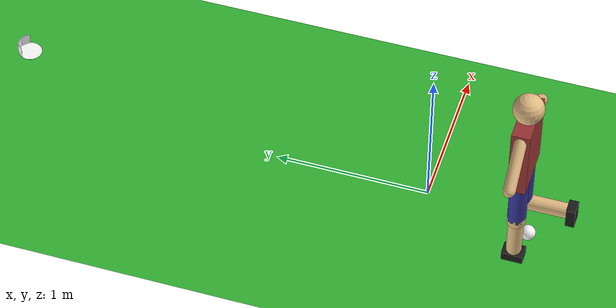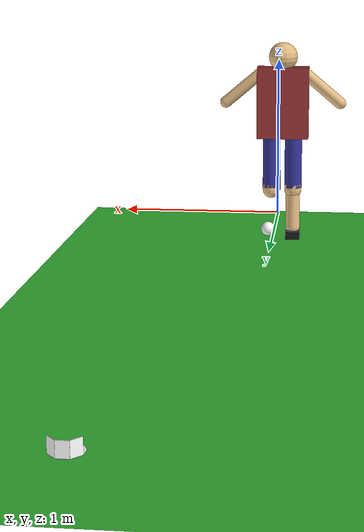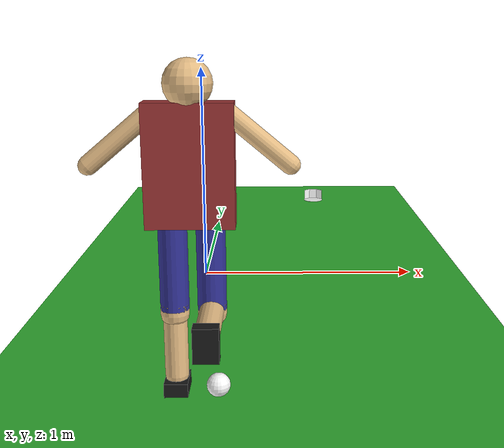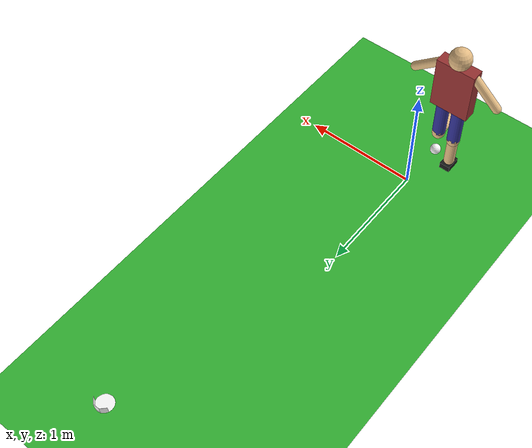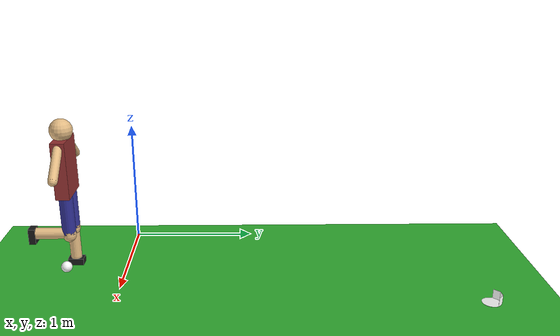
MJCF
<mujoco model="Leg3D">
  <compiler inertiafromgeom="true" angle="radian" coordinate="local"/>
  <option timestep="0.01" gravity="0 0 0" iterations="20" integrator="Euler"/>

  <default>
    <joint armature='0.04' damping="1" limited="true"/>
    <geom friction=".0 .0 .0" density="300" margin="0.002" condim="1" contype="0" conaffinity="0"/>
  </default>

  <worldbody>
    <light diffuse=".5 .5 .5" pos="0 0 3" dir="0 0 -1"/>

    <geom name="table" rgba= "0.2 0.7 0.2 1" type="plane" pos="0 0.5 -0.325 " size="20 20 0.1" contype="1" conaffinity="1"/>

    <geom name="bo" type="box" rgba="0.6 0.2 0.2 1" pos= "0 -0.6 0.65" size="0.18 0.06 0.25" />
    <geom name="e3" type="sphere" rgba="0.91 0.75 0.53 1" pos="0 -0.60 0.97"  size="0.1"/>

    <geom name="e1" type="capsule" rgba="0.91 0.75 0.53 1" fromto="-0.15 -0.6  0.86 -0.4 -0.6 0.65" size="0.04"/>
    <geom name="e2" type="capsule" rgba="0.91 0.75 0.53 1" fromto="0.15 -0.6  0.86 0.4 -0.6 0.65"  size="0.04"/>

    <!-- upper thigh link -->
    <body name="r_upper_thigh_link"  pos="0.077 -0.6 0.45">

      <geom name="ut" type="capsule" rgba="0.2 0.2 0.6 1" fromto="0 0 0 0 0 -0.4" size="0.06" />
      <!--  Hip Lift Joint Location -->
      <joint name="r_hip_lift_joint" type="hinge" pos="0 0 0" axis="0 1 0" range="-0.785 0.785" damping="1.0" />
      <!--  Hip Pan Joint Location -->
      <joint name="r_hip_pan_joint" type="hinge" pos="0 0 0" axis="1 0 0" range="-0.9 0.9" damping="1.0" />
      <!-- Joint to roll upper thigh y axis -->
      <joint name="r_upper_thigh_roll_joint" type="hinge" pos="0 0 0" axis="0 0 1" range="-1.5 1.7" damping="0.1" />

      <!-- knee joint -->
      <body name="r_knee_flex_link"  pos="0 0 -0.4">
        <geom name="kf" type="capsule" rgba= "0.91 0.75 0.53 1" fromto="0 0 0.02 0.0 0 -0.02" size="0.06" />
        <joint name="r_knee_flex_joint" type="hinge" pos="0 0 0" axis="1 0 0" range="0 1.57" damping="0.1"/>

        <!-- leg link -->
        <body name="r_leg_link"  pos="0 0 0">
          <geom name="fa" type="capsule" rgba="0.91 0.75 0.53 1" fromto="0 0 0 0 -0.291 0" size="0.05" />

          <!-- ankle flex -->
          <body name="r_ankle_flex_link" pos="0 -0.321 0">
            <geom name="af" type="capsule" fromto="-0.02 0 0 0.02 0  0" size="0.01" />
            <joint name="r_ankle_flex_joint" type="hinge" pos="0 0 0" axis="0 1 0" range="-1.094 0" damping=".1" />
            <joint name="r_ankle_roll_joint" type="hinge" pos="0 0 0" limited="true" axis="1 0 0" damping="0.1" range="-1.5 1.5"/>

            <!-- foot -->
            <body name="tips_foot"  pos="0 0 0">
              <geom conaffinity="1" rgba="0.1 0.1 0.1 1" contype="1" name="tip_footl" pos="0 0 -0.017" size="0.05 0.03 0.07" type="box" />
            </body>
          </body>
        </body>
      </body>
    </body>

    <!-- upper thigh link -->
    <body name="r_upper_thigh_link2"  pos="-0.077 -0.6 0.45">
      <geom name="ut2" type="capsule" rgba="0.2 0.2 0.6 1" fromto="0 0 0 0 0 -0.4" size="0.06" />

      <!-- knee joint -->
      <body name="r_knee_flex_link2"  pos="0 0 -0.4">
        <geom name="kf2" type="capsule" rgba= "0.91 0.75 0.53 1" fromto="0 0 0.02 0.0 0 -0.02" size="0.06" />

        <!-- leg link -->
        <body name="r_leg_link2"  pos="0 0 0">
          <geom name="fa2" type="capsule" rgba="0.91 0.75 0.53 1" fromto="0 0 0 0 0 -0.291" size="0.05" />

          <!-- ankle flex -->
          <body name="r_ankle_flex_link2" pos="0 0 -0.321">
            <geom name="af2" type="capsule" fromto="-0.02 0 0 0.02 0  0" size="0.01" />

            <!-- foot -->
            <body name="tips_foot2"  pos="0 0 0">
              <geom conaffinity="1" rgba="0.1 0.1 0.1 1" contype="1" name="tip_footl2" pos="0 0 -0.017" size="0.05 0.07 0.03" type="box" />
            </body>
          </body>
        </body>
      </body>
    </body>

    <body name="object" pos="0.1 -0.65 -0.270" >
      <geom type="sphere" rgba="1 1 1 1" pos="0 0 0" size="0.05 0.05 0.05" contype="1" conaffinity="0"/>
      <joint name="obj_slidey" armature="0.1" type="slide" pos="0 0 0" axis="0 1 0" range="-10.3213 10.3" damping="0.3"/>
      <joint name="obj_slidex" armature="0.1" type="slide" pos="0 0 0" axis="1 0 0" range="-10.3213 10.3" damping="0.3"/>
    </body>

    <body name="goal" pos="0.7 3 -0.3230">
      <geom rgba="1. 1. 1. 0" pos="0 0 0" type="box" size="0.01 0.01 0.01" contype="0" conaffinity="0"/>
      <body pos="0 0 0">
        <geom rgba="1. 1. 1. 1" pos="0 0.075 0.04" type="box" size="0.032 0.001 0.04" contype="0" conaffinity="1"/>
      </body>
      <body name="coaster" pos="0 0 0">
        <geom rgba="1. 1. 1. 1" type="cylinder" size="0.08 0.001 0.1" density='1000000' contype="0" conaffinity="0"/>
      </body>
      <body pos="0 0 0" axisangle="0 0 1 0.785">
        <geom rgba="1. 1. 1. 1" pos="0 0.075 0.04" type="box" size="0.032 0.001 0.04" contype="0" conaffinity="1"/>
      </body>
      <body pos="0 0 0" axisangle="0 0 1 -0.785">
        <geom rgba="1. 1. 1. 1" pos="0 0.075 0.04" type="box" size="0.032 0.001 0.04" contype="0" conaffinity="1"/>
      </body>
      <joint name="goal_free" type="free" pos="0 0 0" limited="false" damping="0"/>
    </body>
  </worldbody>

  <actuator>
    <motor joint="r_hip_pan_joint" ctrlrange="-3.0 3.0" ctrllimited="true" />
    <motor joint="r_hip_lift_joint" ctrlrange="-3.0 3.0" ctrllimited="true" />
    <motor joint="r_upper_thigh_roll_joint" ctrlrange="-3.0 3.0" ctrllimited="true" />
    <motor joint="r_knee_flex_joint" ctrlrange="-3.0 3.0" ctrllimited="true" />
    <motor joint="r_ankle_flex_joint" ctrlrange="-3.0 3.0" ctrllimited="true" />
    <motor joint="r_ankle_roll_joint" ctrlrange="-3.0 3.0" ctrllimited="true"/>
  </actuator>

</mujoco>
